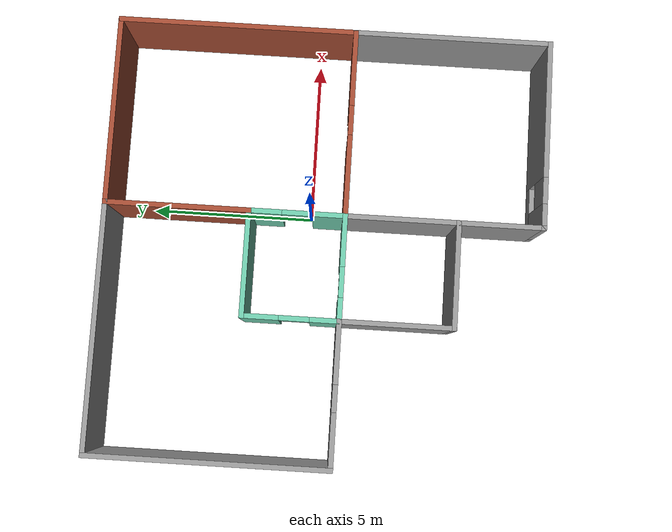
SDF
<?xml version='1.0'?>
<sdf version='1.6'>
  <model name='model'>
    <pose frame=''>-1.04717 -0.40208 0 0 -0 0</pose>
    <link name='Wall_10'>
      <collision name='Wall_10_Collision'>
        <geometry>
          <box>
            <size>5.75 0.15 2.5</size>
          </box>
        </geometry>
        <pose frame=''>0 0 1.25 0 -0 0</pose>
      </collision>
      <visual name='Wall_10_Visual'>
        <pose frame=''>0 0 1.25 0 -0 0</pose>
        <geometry>
          <box>
            <size>5.75 0.15 2.5</size>
          </box>
        </geometry>
        <material>
          <script>
            <uri>file://media/materials/scripts/gazebo.material</uri>
            <name>Gazebo/Bricks</name>
          </script>
          <ambient>1 1 1 1</ambient>
        </material>
        <meta>
          <layer>0</layer>
        </meta>
      </visual>
      <pose frame=''>3.67517 6.47508 0 0 -0 3.14159</pose>
    </link>
    <link name='Wall_11'>
      <collision name='Wall_11_Collision'>
        <geometry>
          <box>
            <size>4.4 0.15 2.5</size>
          </box>
        </geometry>
        <pose frame=''>0 0 1.25 0 -0 0</pose>
      </collision>
      <visual name='Wall_11_Visual'>
        <pose frame=''>0 0 1.25 0 -0 0</pose>
        <geometry>
          <box>
            <size>4.4 0.15 2.5</size>
          </box>
        </geometry>
        <material>
          <script>
            <uri>file://media/materials/scripts/gazebo.material</uri>
            <name>Gazebo/Bricks</name>
          </script>
          <ambient>1 1 1 1</ambient>
        </material>
        <meta>
          <layer>0</layer>
        </meta>
      </visual>
      <pose frame=''>0.875172 4.35008 0 0 -0 -1.5708</pose>
    </link>
    <link name='Wall_13'>
      <collision name='Wall_13_Collision'>
        <geometry>
          <box>
            <size>7.5 0.15 2.5</size>
          </box>
        </geometry>
        <pose frame=''>0 0 1.25 0 -0 0</pose>
      </collision>
      <visual name='Wall_13_Visual'>
        <pose frame=''>0 0 1.25 0 -0 0</pose>
        <geometry>
          <box>
            <size>7.5 0.15 2.5</size>
          </box>
        </geometry>
        <material>
          <script>
            <uri>file://media/materials/scripts/gazebo.material</uri>
            <name>Gazebo/Grey</name>
          </script>
          <ambient>1 1 1 1</ambient>
        </material>
        <meta>
          <layer>0</layer>
        </meta>
      </visual>
      <pose frame=''>-2.8 6.475 0 0 -0 -3.14157</pose>
    </link>
    <link name='Wall_14'>
      <collision name='Wall_14_Collision'>
        <geometry>
          <box>
            <size>7.25 0.15 2.5</size>
          </box>
        </geometry>
        <pose frame=''>0 0 1.25 0 -0 0</pose>
      </collision>
      <visual name='Wall_14_Visual'>
        <pose frame=''>0 0 1.25 0 -0 0</pose>
        <geometry>
          <box>
            <size>7.25 0.15 2.5</size>
          </box>
        </geometry>
        <material>
          <script>
            <uri>file://media/materials/scripts/gazebo.material</uri>
            <name>Gazebo/Grey</name>
          </script>
          <ambient>1 1 1 1</ambient>
        </material>
        <meta>
          <layer>0</layer>
        </meta>
      </visual>
      <pose frame=''>-6.47518 2.92492 0 0 -0 -1.5708</pose>
    </link>
    <link name='Wall_15'>
      <pose frame=''>-4.35 -0.625001 0 0 -0 3.8e-05</pose>
      <visual name='Wall_15_Visual_0'>
        <pose frame=''>-1.34375 0 1.25 0 -0 0</pose>
        <geometry>
          <box>
            <size>1.7125 0.15 2.5</size>
          </box>
        </geometry>
        <material>
          <script>
            <uri>file://media/materials/scripts/gazebo.material</uri>
            <name>Gazebo/Grey</name>
          </script>
          <ambient>1 1 1 1</ambient>
        </material>
        <meta>
          <layer>0</layer>
        </meta>
      </visual>
      <collision name='Wall_15_Collision_0'>
        <geometry>
          <box>
            <size>1.7125 0.15 2.5</size>
          </box>
        </geometry>
        <pose frame=''>-1.34375 0 1.25 0 -0 0</pose>
      </collision>
      <visual name='Wall_15_Visual_1'>
        <pose frame=''>0.85625 0 0.25 0 -0 0</pose>
        <geometry>
          <box>
            <size>2.6875 0.15 0.5</size>
          </box>
        </geometry>
        <material>
          <script>
            <uri>file://media/materials/scripts/gazebo.material</uri>
            <name>Gazebo/Grey</name>
          </script>
          <ambient>1 1 1 1</ambient>
        </material>
        <meta>
          <layer>0</layer>
        </meta>
      </visual>
      <collision name='Wall_15_Collision_1'>
        <geometry>
          <box>
            <size>2.6875 0.15 0.5</size>
          </box>
        </geometry>
        <pose frame=''>0.85625 0 0.25 0 -0 0</pose>
      </collision>
      <visual name='Wall_15_Visual_2'>
        <pose frame=''>1.25625 0 1.5 0 -0 0</pose>
        <geometry>
          <box>
            <size>1.8875 0.15 2</size>
          </box>
        </geometry>
        <material>
          <script>
            <uri>file://media/materials/scripts/gazebo.material</uri>
            <name>Gazebo/Grey</name>
          </script>
          <ambient>1 1 1 1</ambient>
        </material>
        <meta>
          <layer>0</layer>
        </meta>
      </visual>
      <collision name='Wall_15_Collision_2'>
        <geometry>
          <box>
            <size>1.8875 0.15 2</size>
          </box>
        </geometry>
        <pose frame=''>1.25625 0 1.5 0 -0 0</pose>
      </collision>
      <visual name='Wall_15_Visual_3'>
        <pose frame=''>-0.0875 0 1.9 0 -0 0</pose>
        <geometry>
          <box>
            <size>0.8 0.15 1.2</size>
          </box>
        </geometry>
        <material>
          <script>
            <uri>file://media/materials/scripts/gazebo.material</uri>
            <name>Gazebo/Grey</name>
          </script>
          <ambient>1 1 1 1</ambient>
        </material>
        <meta>
          <layer>0</layer>
        </meta>
      </visual>
      <collision name='Wall_15_Collision_3'>
        <geometry>
          <box>
            <size>0.8 0.15 1.2</size>
          </box>
        </geometry>
        <pose frame=''>-0.0875 0 1.9 0 -0 0</pose>
      </collision>
    </link>
    <link name='Wall_16'>
      <collision name='Wall_16_Collision'>
        <geometry>
          <box>
            <size>3.5 0.15 2.5</size>
          </box>
        </geometry>
        <pose frame=''>0 0 1.25 0 -0 0</pose>
      </collision>
      <visual name='Wall_16_Visual'>
        <pose frame=''>0 0 1.25 0 -0 0</pose>
        <geometry>
          <box>
            <size>3.5 0.15 2.5</size>
          </box>
        </geometry>
        <material>
          <script>
            <uri>file://media/materials/scripts/gazebo.material</uri>
            <name>Gazebo/Grey</name>
          </script>
          <ambient>1 1 1 1</ambient>
        </material>
        <meta>
          <layer>0</layer>
        </meta>
      </visual>
      <pose frame=''>-2.225 -2.3 0 0 -0 -1.5709</pose>
    </link>
    <link name='Wall_17'>
      <collision name='Wall_17_Collision'>
        <geometry>
          <box>
            <size>3.25 0.15 2.5</size>
          </box>
        </geometry>
        <pose frame=''>0 0 1.25 0 -0 0</pose>
      </collision>
      <visual name='Wall_17_Visual'>
        <pose frame=''>0 0 1.25 0 -0 0</pose>
        <geometry>
          <box>
            <size>3.25 0.15 2.5</size>
          </box>
        </geometry>
        <material>
          <script>
            <uri>file://media/materials/scripts/gazebo.material</uri>
            <name>Gazebo/Grey</name>
          </script>
          <ambient>1 1 1 1</ambient>
        </material>
        <meta>
          <layer>0</layer>
        </meta>
      </visual>
      <pose frame=''>-0.675176 -3.97508 0 0 -0 0</pose>
    </link>
    <link name='Wall_18'>
      <collision name='Wall_18_Collision'>
        <geometry>
          <box>
            <size>3.5 0.15 2.5</size>
          </box>
        </geometry>
        <pose frame=''>0 0 1.25 0 -0 0</pose>
      </collision>
      <visual name='Wall_18_Visual'>
        <pose frame=''>0 0 1.25 0 -0 0</pose>
        <geometry>
          <box>
            <size>3.5 0.15 2.5</size>
          </box>
        </geometry>
        <material>
          <script>
            <uri>file://media/materials/scripts/gazebo.material</uri>
            <name>Gazebo/Grey</name>
          </script>
          <ambient>1 1 1 1</ambient>
        </material>
        <meta>
          <layer>0</layer>
        </meta>
      </visual>
      <pose frame=''>0.874998 -2.3 0 0 -0 1.57069</pose>
    </link>
    <link name='Wall_20'>
      <collision name='Wall_20_Collision'>
        <geometry>
          <box>
            <size>6 0.15 2.5</size>
          </box>
        </geometry>
        <pose frame=''>0 0 1.25 0 -0 0</pose>
      </collision>
      <visual name='Wall_20_Visual'>
        <pose frame=''>0 0 1.25 0 -0 0</pose>
        <geometry>
          <box>
            <size>6 0.15 2.5</size>
          </box>
        </geometry>
        <material>
          <script>
            <uri>file://media/materials/scripts/gazebo.material</uri>
            <name>Gazebo/Grey</name>
          </script>
          <ambient>1 1 1 1</ambient>
        </material>
        <meta>
          <layer>0</layer>
        </meta>
      </visual>
      <pose frame=''>6.475 -3.55 0 0 -0 -1.57086</pose>
    </link>
    <link name='Wall_21'>
      <pose frame=''>3.67482 -6.47508 0 0 -0 3.14159</pose>
      <visual name='Wall_21_Visual_0'>
        <pose frame=''>-0.799425 0 1.25 0 -0 0</pose>
        <geometry>
          <box>
            <size>4.15115 0.15 2.5</size>
          </box>
        </geometry>
        <material>
          <script>
            <uri>file://media/materials/scripts/gazebo.material</uri>
            <name>Gazebo/Grey</name>
          </script>
          <ambient>1 1 1 1</ambient>
        </material>
        <meta>
          <layer>0</layer>
        </meta>
      </visual>
      <collision name='Wall_21_Collision_0'>
        <geometry>
          <box>
            <size>4.15115 0.15 2.5</size>
          </box>
        </geometry>
        <pose frame=''>-0.799425 0 1.25 0 -0 0</pose>
      </collision>
      <visual name='Wall_21_Visual_1'>
        <pose frame=''>2.07558 0 0.25 0 -0 0</pose>
        <geometry>
          <box>
            <size>1.59885 0.15 0.5</size>
          </box>
        </geometry>
        <material>
          <script>
            <uri>file://media/materials/scripts/gazebo.material</uri>
            <name>Gazebo/Grey</name>
          </script>
          <ambient>1 1 1 1</ambient>
        </material>
        <meta>
          <layer>0</layer>
        </meta>
      </visual>
      <collision name='Wall_21_Collision_1'>
        <geometry>
          <box>
            <size>1.59885 0.15 0.5</size>
          </box>
        </geometry>
        <pose frame=''>2.07558 0 0.25 0 -0 0</pose>
      </collision>
      <visual name='Wall_21_Visual_2'>
        <pose frame=''>2.47558 0 1.5 0 -0 0</pose>
        <geometry>
          <box>
            <size>0.79885 0.15 2</size>
          </box>
        </geometry>
        <material>
          <script>
            <uri>file://media/materials/scripts/gazebo.material</uri>
            <name>Gazebo/Grey</name>
          </script>
          <ambient>1 1 1 1</ambient>
        </material>
        <meta>
          <layer>0</layer>
        </meta>
      </visual>
      <collision name='Wall_21_Collision_2'>
        <geometry>
          <box>
            <size>0.79885 0.15 2</size>
          </box>
        </geometry>
        <pose frame=''>2.47558 0 1.5 0 -0 0</pose>
      </collision>
      <visual name='Wall_21_Visual_3'>
        <pose frame=''>1.67615 0 1.9 0 -0 0</pose>
        <geometry>
          <box>
            <size>0.8 0.15 1.2</size>
          </box>
        </geometry>
        <material>
          <script>
            <uri>file://media/materials/scripts/gazebo.material</uri>
            <name>Gazebo/Grey</name>
          </script>
          <ambient>1 1 1 1</ambient>
        </material>
        <meta>
          <layer>0</layer>
        </meta>
      </visual>
      <collision name='Wall_21_Collision_3'>
        <geometry>
          <box>
            <size>0.8 0.15 1.2</size>
          </box>
        </geometry>
        <pose frame=''>1.67615 0 1.9 0 -0 0</pose>
      </collision>
    </link>
    <link name='Wall_22'>
      <collision name='Wall_22_Collision'>
        <geometry>
          <box>
            <size>2.65 0.15 2.5</size>
          </box>
        </geometry>
        <pose frame=''>0 0 1.25 0 -0 0</pose>
      </collision>
      <visual name='Wall_22_Visual'>
        <pose frame=''>0 0 1.25 0 -0 0</pose>
        <geometry>
          <box>
            <size>2.65 0.15 2.5</size>
          </box>
        </geometry>
        <material>
          <script>
            <uri>file://media/materials/scripts/gazebo.material</uri>
            <name>Gazebo/Grey</name>
          </script>
          <ambient>1 1 1 1</ambient>
        </material>
        <meta>
          <layer>0</layer>
        </meta>
      </visual>
      <pose frame=''>0.874824 -5.22508 0 0 -0 1.5708</pose>
    </link>
    <link name='Wall_3'>
      <collision name='Wall_3_Collision'>
        <geometry>
          <box>
            <size>3.25 0.15 2.5</size>
          </box>
        </geometry>
        <pose frame=''>0 0 1.25 0 -0 0</pose>
      </collision>
      <visual name='Wall_3_Visual'>
        <pose frame=''>0 0 1.25 0 -0 0</pose>
        <geometry>
          <box>
            <size>3.25 0.15 2.5</size>
          </box>
        </geometry>
        <material>
          <script>
            <uri>file://media/materials/scripts/gazebo.material</uri>
            <name>Gazebo/Grey</name>
          </script>
          <ambient>0.435294 0.796078 0.67451 1</ambient>
        </material>
        <meta>
          <layer>0</layer>
        </meta>
      </visual>
      <pose frame=''>-0.674828 2.22508 0 0 -0 0</pose>
    </link>
    <link name='Wall_4'>
      <pose frame=''>0.875172 0.80008 0 0 -0 -1.5708</pose>
      <visual name='Wall_4_Visual_0'>
        <pose frame=''>-0.973468 0 1.25 0 -0 0</pose>
        <geometry>
          <box>
            <size>1.05306 0.15 2.5</size>
          </box>
        </geometry>
        <material>
          <script>
            <uri>file://media/materials/scripts/gazebo.material</uri>
            <name>Gazebo/Grey</name>
          </script>
          <ambient>0.435294 0.796078 0.67451 1</ambient>
        </material>
        <meta>
          <layer>0</layer>
        </meta>
      </visual>
      <collision name='Wall_4_Collision_0'>
        <geometry>
          <box>
            <size>1.05306 0.15 2.5</size>
          </box>
        </geometry>
        <pose frame=''>-0.973468 0 1.25 0 -0 0</pose>
      </collision>
      <visual name='Wall_4_Visual_1'>
        <pose frame=''>0.976532 0 1.25 0 -0 0</pose>
        <geometry>
          <box>
            <size>1.04694 0.15 2.5</size>
          </box>
        </geometry>
        <material>
          <script>
            <uri>file://media/materials/scripts/gazebo.material</uri>
            <name>Gazebo/Grey</name>
          </script>
          <ambient>0.435294 0.796078 0.67451 1</ambient>
        </material>
        <meta>
          <layer>0</layer>
        </meta>
      </visual>
      <collision name='Wall_4_Collision_1'>
        <geometry>
          <box>
            <size>1.04694 0.15 2.5</size>
          </box>
        </geometry>
        <pose frame=''>0.976532 0 1.25 0 -0 0</pose>
      </collision>
      <visual name='Wall_4_Visual_2'>
        <pose frame=''>0.003064 0 2.25 0 -0 0</pose>
        <geometry>
          <box>
            <size>0.9 0.15 0.5</size>
          </box>
        </geometry>
        <material>
          <script>
            <uri>file://media/materials/scripts/gazebo.material</uri>
            <name>Gazebo/Grey</name>
          </script>
          <ambient>0.435294 0.796078 0.67451 1</ambient>
        </material>
        <meta>
          <layer>0</layer>
        </meta>
      </visual>
      <collision name='Wall_4_Collision_2'>
        <geometry>
          <box>
            <size>0.9 0.15 0.5</size>
          </box>
        </geometry>
        <pose frame=''>0.003064 0 2.25 0 -0 0</pose>
      </collision>
    </link>
    <link name='Wall_5'>
      <pose frame=''>-0.674828 -0.62492 0 0 -0 3.14159</pose>
      <visual name='Wall_5_Visual_0'>
        <pose frame=''>-0.835737 0 1.25 0 -0 0</pose>
        <geometry>
          <box>
            <size>1.57853 0.15 2.5</size>
          </box>
        </geometry>
        <material>
          <script>
            <uri>file://media/materials/scripts/gazebo.material</uri>
            <name>Gazebo/Grey</name>
          </script>
          <ambient>0.435294 0.796078 0.67451 1</ambient>
        </material>
        <meta>
          <layer>0</layer>
        </meta>
      </visual>
      <collision name='Wall_5_Collision_0'>
        <geometry>
          <box>
            <size>1.57853 0.15 2.5</size>
          </box>
        </geometry>
        <pose frame=''>-0.835737 0 1.25 0 -0 0</pose>
      </collision>
      <visual name='Wall_5_Visual_1'>
        <pose frame=''>1.23926 0 1.25 0 -0 0</pose>
        <geometry>
          <box>
            <size>0.771474 0.15 2.5</size>
          </box>
        </geometry>
        <material>
          <script>
            <uri>file://media/materials/scripts/gazebo.material</uri>
            <name>Gazebo/Grey</name>
          </script>
          <ambient>0.435294 0.796078 0.67451 1</ambient>
        </material>
        <meta>
          <layer>0</layer>
        </meta>
      </visual>
      <collision name='Wall_5_Collision_1'>
        <geometry>
          <box>
            <size>0.771474 0.15 2.5</size>
          </box>
        </geometry>
        <pose frame=''>1.23926 0 1.25 0 -0 0</pose>
      </collision>
      <visual name='Wall_5_Visual_2'>
        <pose frame=''>0.403526 0 2.25 0 -0 0</pose>
        <geometry>
          <box>
            <size>0.9 0.15 0.5</size>
          </box>
        </geometry>
        <material>
          <script>
            <uri>file://media/materials/scripts/gazebo.material</uri>
            <name>Gazebo/Grey</name>
          </script>
          <ambient>0.435294 0.796078 0.67451 1</ambient>
        </material>
        <meta>
          <layer>0</layer>
        </meta>
      </visual>
      <collision name='Wall_5_Collision_2'>
        <geometry>
          <box>
            <size>0.9 0.15 0.5</size>
          </box>
        </geometry>
        <pose frame=''>0.403526 0 2.25 0 -0 0</pose>
      </collision>
    </link>
    <link name='Wall_6'>
      <pose frame=''>-2.22483 0.80008 0 0 -0 1.5708</pose>
      <visual name='Wall_6_Visual_0'>
        <pose frame=''>-1.02682 0 1.25 0 -0 0</pose>
        <geometry>
          <box>
            <size>0.946369 0.15 2.5</size>
          </box>
        </geometry>
        <material>
          <script>
            <uri>file://media/materials/scripts/gazebo.material</uri>
            <name>Gazebo/Grey</name>
          </script>
          <ambient>0.435294 0.796078 0.67451 1</ambient>
        </material>
        <meta>
          <layer>0</layer>
        </meta>
      </visual>
      <collision name='Wall_6_Collision_0'>
        <geometry>
          <box>
            <size>0.946369 0.15 2.5</size>
          </box>
        </geometry>
        <pose frame=''>-1.02682 0 1.25 0 -0 0</pose>
      </collision>
      <visual name='Wall_6_Visual_1'>
        <pose frame=''>0.923184 0 1.25 0 -0 0</pose>
        <geometry>
          <box>
            <size>1.15363 0.15 2.5</size>
          </box>
        </geometry>
        <material>
          <script>
            <uri>file://media/materials/scripts/gazebo.material</uri>
            <name>Gazebo/Grey</name>
          </script>
          <ambient>0.435294 0.796078 0.67451 1</ambient>
        </material>
        <meta>
          <layer>0</layer>
        </meta>
      </visual>
      <collision name='Wall_6_Collision_1'>
        <geometry>
          <box>
            <size>1.15363 0.15 2.5</size>
          </box>
        </geometry>
        <pose frame=''>0.923184 0 1.25 0 -0 0</pose>
      </collision>
      <visual name='Wall_6_Visual_2'>
        <pose frame=''>-0.103631 0 2.25 0 -0 0</pose>
        <geometry>
          <box>
            <size>0.9 0.15 0.5</size>
          </box>
        </geometry>
        <material>
          <script>
            <uri>file://media/materials/scripts/gazebo.material</uri>
            <name>Gazebo/Grey</name>
          </script>
          <ambient>0.435294 0.796078 0.67451 1</ambient>
        </material>
        <meta>
          <layer>0</layer>
        </meta>
      </visual>
      <collision name='Wall_6_Collision_2'>
        <geometry>
          <box>
            <size>0.9 0.15 0.5</size>
          </box>
        </geometry>
        <pose frame=''>-0.103631 0 2.25 0 -0 0</pose>
      </collision>
    </link>
    <link name='Wall_8'>
      <pose frame=''>3.67517 -0.62492 0 0 -0 0</pose>
      <visual name='Wall_8_Visual_0'>
        <pose frame=''>-1.61558 0 1.25 0 -0 0</pose>
        <geometry>
          <box>
            <size>2.51884 0.15 2.5</size>
          </box>
        </geometry>
        <material>
          <script>
            <uri>file://media/materials/scripts/gazebo.material</uri>
            <name>Gazebo/Bricks</name>
          </script>
          <ambient>1 1 1 1</ambient>
        </material>
        <meta>
          <layer>0</layer>
        </meta>
      </visual>
      <collision name='Wall_8_Collision_0'>
        <geometry>
          <box>
            <size>2.51884 0.15 2.5</size>
          </box>
        </geometry>
        <pose frame=''>-1.61558 0 1.25 0 -0 0</pose>
      </collision>
      <visual name='Wall_8_Visual_1'>
        <pose frame=''>1.70942 0 1.25 0 -0 0</pose>
        <geometry>
          <box>
            <size>2.33116 0.15 2.5</size>
          </box>
        </geometry>
        <material>
          <script>
            <uri>file://media/materials/scripts/gazebo.material</uri>
            <name>Gazebo/Bricks</name>
          </script>
          <ambient>1 1 1 1</ambient>
        </material>
        <meta>
          <layer>0</layer>
        </meta>
      </visual>
      <collision name='Wall_8_Collision_1'>
        <geometry>
          <box>
            <size>2.33116 0.15 2.5</size>
          </box>
        </geometry>
        <pose frame=''>1.70942 0 1.25 0 -0 0</pose>
      </collision>
      <visual name='Wall_8_Visual_2'>
        <pose frame=''>0.093844 0 2.25 0 -0 0</pose>
        <geometry>
          <box>
            <size>0.9 0.15 0.5</size>
          </box>
        </geometry>
        <material>
          <script>
            <uri>file://media/materials/scripts/gazebo.material</uri>
            <name>Gazebo/Bricks</name>
          </script>
          <ambient>1 1 1 1</ambient>
        </material>
        <meta>
          <layer>0</layer>
        </meta>
      </visual>
      <collision name='Wall_8_Collision_2'>
        <geometry>
          <box>
            <size>0.9 0.15 0.5</size>
          </box>
        </geometry>
        <pose frame=''>0.093844 0 2.25 0 -0 0</pose>
      </collision>
    </link>
    <link name='Wall_9'>
      <collision name='Wall_9_Collision'>
        <geometry>
          <box>
            <size>7.25 0.15 2.5</size>
          </box>
        </geometry>
        <pose frame=''>0 0 1.25 0 -0 0</pose>
      </collision>
      <visual name='Wall_9_Visual'>
        <pose frame=''>0 0 1.25 0 -0 0</pose>
        <geometry>
          <box>
            <size>7.25 0.15 2.5</size>
          </box>
        </geometry>
        <material>
          <script>
            <uri>file://media/materials/scripts/gazebo.material</uri>
            <name>Gazebo/Bricks</name>
          </script>
          <ambient>1 1 1 1</ambient>
        </material>
        <meta>
          <layer>0</layer>
        </meta>
      </visual>
      <pose frame=''>6.47517 2.92508 0 0 -0 1.5708</pose>
    </link>
    <static>1</static>
  </model>
</sdf>
